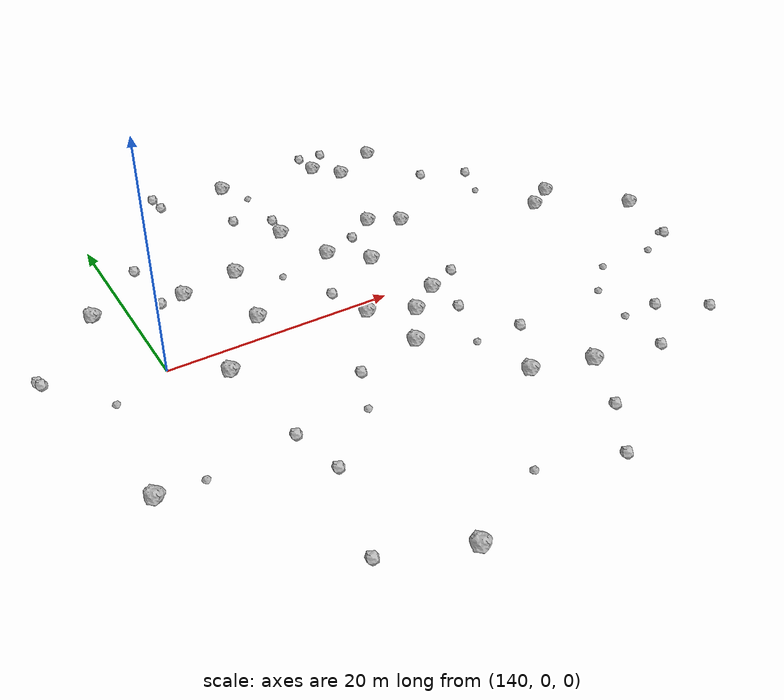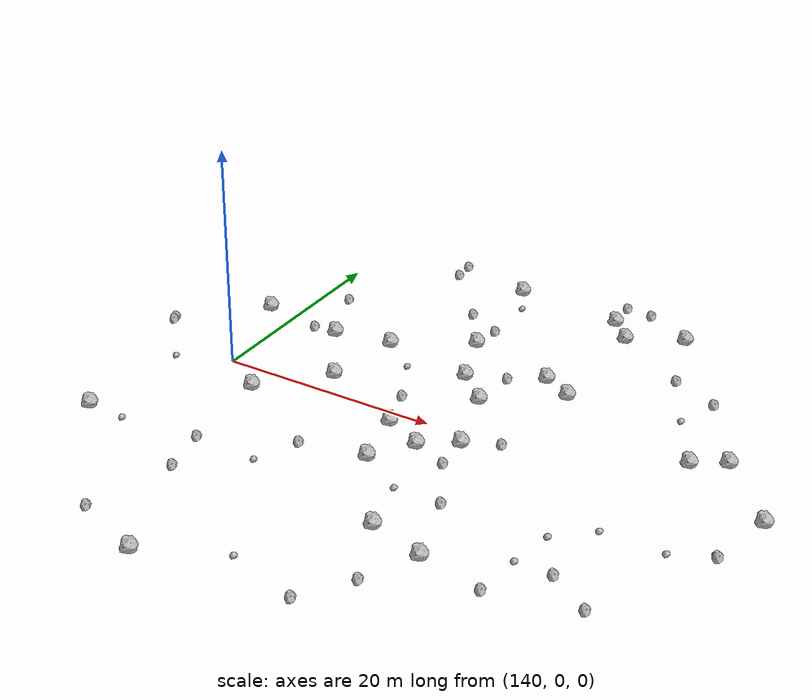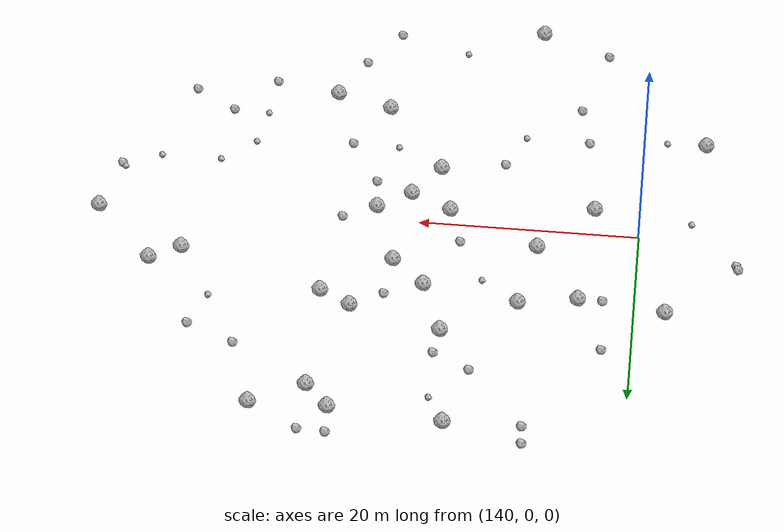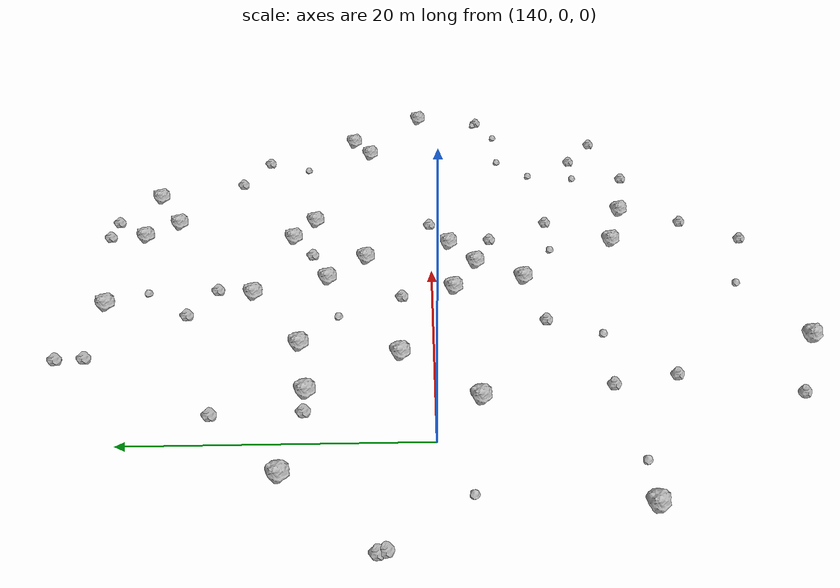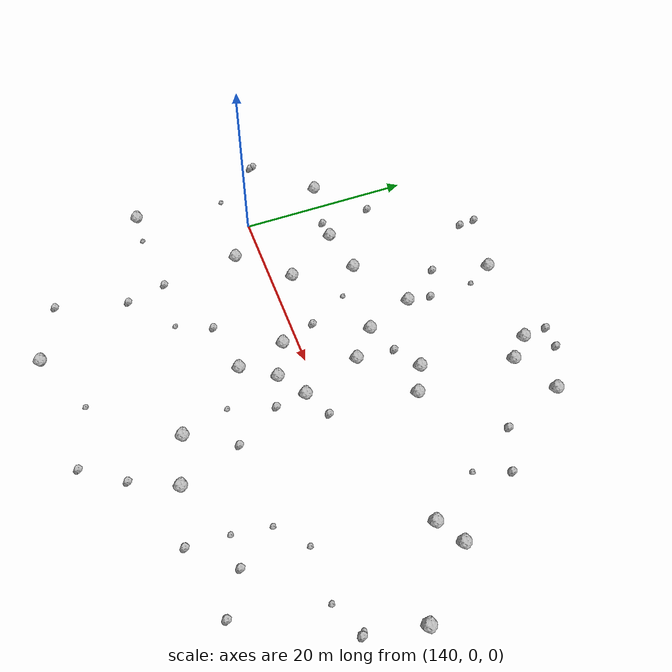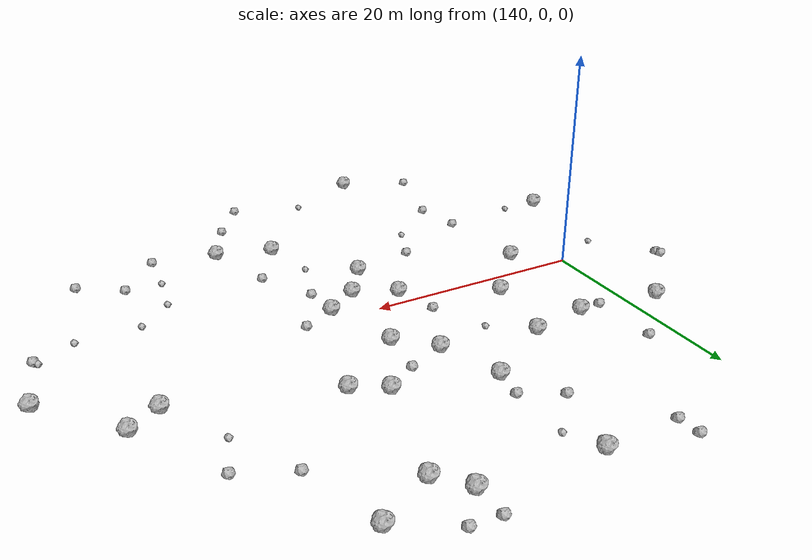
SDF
<sdf version="1.6">
 <world name="default">
  <include><uri>model://sun</uri></include>
  <model name="rock1_4_2">
   <include><uri>model://rock1</uri><pose>149.07232519250795 2.4330133145259154 0.5 0 0 0</pose></include>
  </model>
  <model name="rock1_4_3">
   <include><uri>model://rock1</uri><pose>172.46270348767376 23.82074814556207 0.5 0 0 0</pose></include>
  </model>
  <model name="rock1_4_4">
   <include><uri>model://rock1</uri><pose>157.30812849204133 -1.6096622660039728 0.5 0 0 0</pose></include>
  </model>
  <model name="rock1_4_5">
   <include><uri>model://rock1</uri><pose>183.78097751036302 7.2208213115492725 0.5 0 0 0</pose></include>
  </model>
  <model name="rock1_4_6">
   <include><uri>model://rock1</uri><pose>155.58996667527498 24.514802528286424 0.5 0 0 0</pose></include>
  </model>
  <model name="rock1_4_7">
   <include><uri>model://rock1</uri><pose>144.1721282388519 -2.937722937123308 0.5 0 0 0</pose></include>
  </model>
  <model name="rock1_4_8">
   <include><uri>model://rock1</uri><pose>181.06419708549973 5.572464975341461 0.5 0 0 0</pose></include>
  </model>
  <model name="rock1_4_9">
   <include><uri>model://rock1</uri><pose>164.1867468219537 -14.868855807736864 0.5 0 0 0</pose></include>
  </model>
  <model name="rock1_4_10">
   <include><uri>model://rock1</uri><pose>161.86119580563252 5.295571012102698 0.5 0 0 0</pose></include>
  </model>
  <model name="rock1_4_11">
   <include><uri>model://rock1</uri><pose>158.84737344825007 8.162494071764108 0.5 0 0 0</pose></include>
  </model>
  <model name="rock1_4_12">
   <include><uri>model://rock1</uri><pose>167.91049430176028 9.795611937114927 0.5 0 0 0</pose></include>
  </model>
  <model name="rock1_4_13">
   <include><uri>model://rock1</uri><pose>169.31736334849475 -16.439193564781025 0.5 0 0 0</pose></include>
  </model>
  <model name="rock1_4_14">
   <include><uri>model://rock1</uri><pose>164.02749477505236 -1.410147935773164 0.5 0 0 0</pose></include>
  </model>
  <model name="rock1_4_15">
   <include><uri>model://rock1</uri><pose>158.6197704861093 -7.087752642996925 0.5 0 0 0</pose></include>
  </model>
  <model name="rock1_4_16">
   <include><uri>model://rock1</uri><pose>150.49020313948262 -27.016814211086462 0.5 0 0 0</pose></include>
  </model>
  <model name="rock1_4_17">
   <include><uri>model://rock1</uri><pose>165.61501642234873 23.712325160618768 0.5 0 0 0</pose></include>
  </model>
  <model name="rock1_4_18">
   <include><uri>model://rock1</uri><pose>145.00285550180848 8.687003423559055 0.5 0 0 0</pose></include>
  </model>
  <model name="rock1_4_19">
   <include><uri>model://rock1</uri><pose>161.03275097430878 -3.4797067385289964 0.5 0 0 0</pose></include>
  </model>
  <model name="rock1_4_20">
   <include><uri>model://rock1</uri><pose>156.8308961035541 13.666985645487443 0.5 0 0 0</pose></include>
  </model>
  <model name="rock1_4_21">
   <include><uri>model://rock1</uri><pose>137.239768068556 9.613855238823632 0.5 0 0 0</pose></include>
  </model>
  <model name="rock1_4_22">
   <include><uri>model://rock1</uri><pose>167.7394212547796 21.315064306808715 0.5 0 0 0</pose></include>
  </model>
  <model name="rock1_4_23">
   <include><uri>model://rock1</uri><pose>165.10257261435632 11.376955079005612 0.5 0 0 0</pose></include>
  </model>
  <model name="rock1_4_24">
   <include><uri>model://rock1</uri><pose>150.29107479388026 9.60936531639031 0.5 0 0 0</pose></include>
  </model>
  <model name="rock1_4_25">
   <include><uri>model://rock1</uri><pose>189.35280394117558 0.9346319784249211 0.5 0 0 0</pose></include>
  </model>
  <model name="rock1_4_26">
   <include><uri>model://rock1</uri><pose>134.34729387152746 -12.532754957942196 0.5 0 0 0</pose></include>
  </model>
  <model name="rock2_4_0">
   <include><uri>model://rock2</uri><pose>142.58762219037243 14.601234105313402 0.3 0 0 0</pose></include>
  </model>
  <model name="rock2_4_1">
   <include><uri>model://rock2</uri><pose>188.1324823798201 -4.978467334937854 0.3 0 0 0</pose></include>
  </model>
  <model name="rock2_4_2">
   <include><uri>model://rock2</uri><pose>167.05373883873068 -21.23896948286133 0.3 0 0 0</pose></include>
  </model>
  <model name="rock2_4_3">
   <include><uri>model://rock2</uri><pose>182.71812430889776 -15.838557904542498 0.3 0 0 0</pose></include>
  </model>
  <model name="rock2_4_4">
   <include><uri>model://rock2</uri><pose>178.84656758687447 -13.329765557621599 0.3 0 0 0</pose></include>
  </model>
  <model name="rock2_4_5">
   <include><uri>model://rock2</uri><pose>164.36427718641244 -4.805510263128202 0.3 0 0 0</pose></include>
  </model>
  <model name="rock2_4_6">
   <include><uri>model://rock2</uri><pose>167.13402132068654 -9.721804914057913 0.3 0 0 0</pose></include>
  </model>
  <model name="rock2_4_7">
   <include><uri>model://rock2</uri><pose>131.09482524328203 3.0476744920634857 0.3 0 0 0</pose></include>
  </model>
  <model name="rock2_4_8">
   <include><uri>model://rock2</uri><pose>145.17188173187458 -11.903087028022963 0.3 0 0 0</pose></include>
  </model>
  <model name="rock2_4_9">
   <include><uri>model://rock2</uri><pose>148.8100514364599 24.29239318623344 0.3 0 0 0</pose></include>
  </model>
  <model name="rock2_4_10">
   <include><uri>model://rock2</uri><pose>179.1000598190249 14.916175584534578 0.3 0 0 0</pose></include>
  </model>
  <model name="rock2_4_11">
   <include><uri>model://rock2</uri><pose>165.43479109536693 26.585957046186635 0.3 0 0 0</pose></include>
  </model>
  <model name="rock2_4_12">
   <include><uri>model://rock2</uri><pose>152.74418886248938 -8.231579665890372 0.3 0 0 0</pose></include>
  </model>
  <model name="rock2_4_13">
   <include><uri>model://rock2</uri><pose>146.14117141164863 -16.365141905898064 0.3 0 0 0</pose></include>
  </model>
  <model name="rock2_4_14">
   <include><uri>model://rock2</uri><pose>130.9306095699033 3.511156286287779 0.3 0 0 0</pose></include>
  </model>
  <model name="rock2_4_15">
   <include><uri>model://rock2</uri><pose>142.81911908497372 8.618577686958936 0.3 0 0 0</pose></include>
  </model>
  <model name="rock2_4_16">
   <include><uri>model://rock2</uri><pose>167.00094123217985 0.10866233716326335 0.3 0 0 0</pose></include>
  </model>
  <model name="rock2_4_17">
   <include><uri>model://rock2</uri><pose>156.04312235002024 2.355292319037531 0.3 0 0 0</pose></include>
  </model>
  <model name="rock2_4_18">
   <include><uri>model://rock2</uri><pose>175.23776292444705 -17.668040463601443 0.3 0 0 0</pose></include>
  </model>
  <model name="rock2_4_19">
   <include><uri>model://rock2</uri><pose>167.897522797995 26.445775616419965 0.3 0 0 0</pose></include>
  </model>
  <model name="rock2_4_20">
   <include><uri>model://rock2</uri><pose>174.75781926031405 16.882203383974485 0.3 0 0 0</pose></include>
  </model>
  <model name="rock2_4_21">
   <include><uri>model://rock2</uri><pose>153.86717942975105 18.145011564681305 0.3 0 0 0</pose></include>
  </model>
  <model name="rock2_4_22">
   <include><uri>model://rock2</uri><pose>164.13233467004488 -25.586273206470107 0.3 0 0 0</pose></include>
  </model>
  <model name="rock2_4_23">
   <include><uri>model://rock2</uri><pose>148.67739265248252 26.261346340868712 0.3 0 0 0</pose></include>
  </model>
  <model name="rock2_4_24">
   <include><uri>model://rock2</uri><pose>157.17971308140764 16.364801950907818 0.3 0 0 0</pose></include>
  </model>
  <model name="rock2_4_25">
   <include><uri>model://rock2</uri><pose>162.22836476044452 9.57611861140876 0.3 0 0 0</pose></include>
  </model>
  <model name="rock2_4_26">
   <include><uri>model://rock2</uri><pose>144.0460540802261 -24.349087928681364 0.3 0 0 0</pose></include>
  </model>
  <model name="rock3_4_0">
   <include><uri>model://rock3</uri><pose>184.64873938673372 -6.533986265431384 0.2 0 0 0</pose></include>
  </model>
  <model name="rock3_4_1">
   <include><uri>model://rock3</uri><pose>179.11789877054022 -6.531197696041346 0.2 0 0 0</pose></include>
  </model>
  <model name="rock3_4_2">
   <include><uri>model://rock3</uri><pose>176.1378981626379 -9.229578757049374 0.2 0 0 0</pose></include>
  </model>
  <model name="rock3_4_3">
   <include><uri>model://rock3</uri><pose>177.748311792381 11.180846098889099 0.2 0 0 0</pose></include>
  </model>
  <model name="rock3_4_4">
   <include><uri>model://rock3</uri><pose>175.5173420108605 -13.2746939855701 0.2 0 0 0</pose></include>
  </model>
  <model name="rock3_4_5">
   <include><uri>model://rock3</uri><pose>187.79480070172815 -4.691127707963535 0.2 0 0 0</pose></include>
  </model>
  <model name="rock3_4_6">
   <include><uri>model://rock3</uri><pose>157.52555428807 -23.567283283137698 0.2 0 0 0</pose></include>
  </model>
  <model name="rock3_4_7">
   <include><uri>model://rock3</uri><pose>157.01856578028463 21.599151667721316 0.2 0 0 0</pose></include>
  </model>
  <model name="rock3_4_8">
   <include><uri>model://rock3</uri><pose>137.91777292903768 -12.724215134523142 0.2 0 0 0</pose></include>
  </model>
  <model name="rock3_4_9">
   <include><uri>model://rock3</uri><pose>153.62662348693837 6.965362649562394 0.2 0 0 0</pose></include>
  </model>
  <model name="rock3_4_10">
   <include><uri>model://rock3</uri><pose>151.04360298435077 -12.173037215442765 0.2 0 0 0</pose></include>
  </model>
  <model name="rock3_4_11">
   <include><uri>model://rock3</uri><pose>162.7912554482915 -9.709409313023233 0.2 0 0 0</pose></include>
  </model>
  <model name="rock3_4_12">
   <include><uri>model://rock3</uri><pose>135.2538883374655 -2.06498431973683 0.2 0 0 0</pose></include>
  </model>
 </world>
</sdf>
